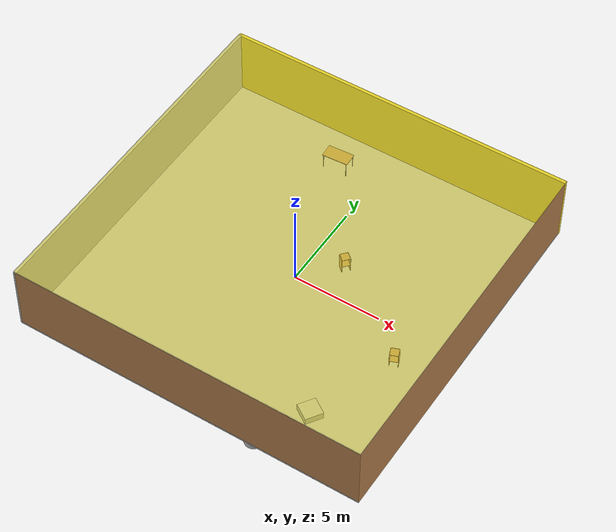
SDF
<sdf version="1.4">
 <world name="default">
  <physics type="ode">
   <max_step_size>0.001</max_step_size>
   <real_time_factor>1</real_time_factor>
   <real_time_update_rate>1000</real_time_update_rate>
   <gravity>0 0 -9.8</gravity>
  </physics>
  <scene><ambient>0.4 0.4 0.4 1</ambient><background>0.7 0.7 0.7 1</background><shadows>1</shadows></scene>
  <model name="Surrounding">
   <static>1</static>
   <link name="Ceiling">
    <collision name="Ceiling_Collision"><geometry><box><size>20 20 0.1</size></box></geometry></collision>
    <visual name="Ceiling_Visual">
     <geometry><box><size>20 20 0.1</size></box></geometry>
     <material>
      <script>
       <uri>file://media/materials/scripts/gazebo.material</uri>
       <name>Gazebo/YellowTransparent</name>
      </script>
     </material>
    </visual>
    <pose>0 0 4.05 0 0 0</pose>
   </link>
   <link name="Wall_South">
    <collision name="Wall_South_Collision">
     <geometry><box><size>20 0 4</size></box></geometry>
     <pose>0 0 2 0 -0 0</pose>
    </collision>
    <visual name="Wall_South_Visual">
     <pose>0 0 2 0 -0 0</pose>
     <geometry><box><size>20 0 4</size></box></geometry>
     <material>
      <script><uri>file://media/materials/scripts/gazebo.material</uri><name>Gazebo/Wood</name></script>
     </material>
    </visual>
    <velocity_decay><linear>0</linear><angular>0</angular></velocity_decay>
    <pose>0 -10 0 0 -0 0</pose>
   </link>
   <link name="Wall_East">
    <collision name="Wall_21_Collision">
     <geometry><box><size>20 0 4</size></box></geometry>
     <pose>0 0 2 0 -0 0</pose>
    </collision>
    <visual name="Wall_21_Visual">
     <pose>0 0 2 0 -0 0</pose>
     <geometry><box><size>20 0 4</size></box></geometry>
     <material>
      <script><uri>file://media/materials/scripts/gazebo.material</uri><name>Gazebo/WoodPallet</name></script>
     </material>
    </visual>
    <velocity_decay><linear>0</linear><angular>0</angular></velocity_decay>
    <pose>10 0 0 0 -0 1.5708</pose>
   </link>
   <link name="Wall_North">
    <collision name="Wall_22_Collision">
     <geometry><box><size>20 0.2 4</size></box></geometry>
     <pose>0 0 2 0 -0 0</pose>
    </collision>
    <visual name="Wall_22_Visual">
     <pose>0 0 2 0 -0 0</pose>
     <geometry><box><size>20 0.2 4</size></box></geometry>
     <material>
      <script><uri>file://media/materials/scripts/gazebo.material</uri><name>Gazebo/ZincYellow</name></script>
     </material>
    </visual>
    <velocity_decay><linear>0</linear><angular>0</angular></velocity_decay>
    <pose>0 10 0 0 -0 0</pose>
   </link>
   <link name="Wall_West">
    <collision name="Wall_23_Collision">
     <geometry><box><size>20 0.2 4</size></box></geometry>
     <pose>0 0 2 0 -0 0</pose>
    </collision>
    <visual name="Wall_23_Visual">
     <pose>0 0 2 0 -0 0</pose>
     <geometry><box><size>20 0.2 4</size></box></geometry>
     <material>
      <script><uri>file://media/materials/scripts/gazebo.material</uri><name>Gazebo/Pioneer2Body</name></script>
     </material>
    </visual>
    <velocity_decay><linear>0</linear><angular>0</angular></velocity_decay>
    <pose>-10 0 0 0 0 -1.5708</pose>
   </link>
   <link name="Ground_link">
    <collision name="collision">
     <pose>0 0 .05 0 -0 0</pose>
     <geometry><box><size>20 20 0.1</size></box></geometry>
    </collision>
    <visual name="visual">
     <pose>0 0 .05 0 -0 0</pose>
     <geometry><box><size>20 20 0.1</size></box></geometry>
     <material>
      <script><uri>file://media/materials/scripts/gazebo.material</uri><name>Gazebo/Pioneer2Body</name></script>
     </material>
    </visual>
   </link>
   <static>1</static>
  </model>
  <spherical_coordinates>
   <surface_model>EARTH_WGS84</surface_model>
   <latitude_deg>0</latitude_deg>
   <longitude_deg>0</longitude_deg>
   <elevation>0</elevation>
   <heading_deg>0</heading_deg>
  </spherical_coordinates>
  <light name="lightball_0" type="diffuse">
   <diffuse>0.8 0.8 0.8 1</diffuse>
   <specular>0.2 0.2 0.2 1</specular>
   <attenuation>
    <range>100</range>
    <constant>0.7</constant>
    <linear>0.01</linear>
    <quadratic>0.001</quadratic>
   </attenuation>
   <direction>-0.5 0.1 -0.9</direction>
   <pose>9.16212608148 -2.12675593524 1.04250743232 0 0 0</pose>
  </light>
  <light name="lightball_1" type="diffuse">
   <diffuse>0.8 0.8 0.8 1</diffuse>
   <specular>0.2 0.2 0.2 1</specular>
   <attenuation>
    <range>100</range>
    <constant>0.7</constant>
    <linear>0.01</linear>
    <quadratic>0.001</quadratic>
   </attenuation>
   <direction>-0.5 0.1 -0.9</direction>
   <pose>-0.4319742125 -4.40209914613 1.16134979477 0 0 0</pose>
  </light>
  <light name="lightball_2" type="diffuse">
   <diffuse>0.8 0.8 0.8 1</diffuse>
   <specular>0.2 0.2 0.2 1</specular>
   <attenuation>
    <range>100</range>
    <constant>0.7</constant>
    <linear>0.01</linear>
    <quadratic>0.001</quadratic>
   </attenuation>
   <direction>-0.5 0.1 -0.9</direction>
   <pose>-1.50178055695 8.26961461822 1.22694117194 0 0 0</pose>
  </light>
  <light name="lightball_3" type="diffuse">
   <diffuse>0.8 0.8 0.8 1</diffuse>
   <specular>0.2 0.2 0.2 1</specular>
   <attenuation>
    <range>100</range>
    <constant>0.7</constant>
    <linear>0.01</linear>
    <quadratic>0.001</quadratic>
   </attenuation>
   <direction>-0.5 0.1 -0.9</direction>
   <pose>9.84298703185 -2.27464212983 3.66704180984 0 0 0</pose>
  </light>
  <light name="lightball_4" type="diffuse">
   <diffuse>0.8 0.8 0.8 1</diffuse>
   <specular>0.2 0.2 0.2 1</specular>
   <attenuation>
    <range>100</range>
    <constant>0.7</constant>
    <linear>0.01</linear>
    <quadratic>0.001</quadratic>
   </attenuation>
   <direction>-0.5 0.1 -0.9</direction>
   <pose>-7.11588082516 -2.44811560885 1.3666836894 0 0 0</pose>
  </light>
  <light name="lightball_5" type="diffuse">
   <diffuse>0.8 0.8 0.8 1</diffuse>
   <specular>0.2 0.2 0.2 1</specular>
   <attenuation>
    <range>100</range>
    <constant>0.7</constant>
    <linear>0.01</linear>
    <quadratic>0.001</quadratic>
   </attenuation>
   <direction>-0.5 0.1 -0.9</direction>
   <pose>8.95875267318 -4.79692239595 2.98243171313 0 0 0</pose>
  </light>
  <light name="lightball_6" type="diffuse">
   <diffuse>0.8 0.8 0.8 1</diffuse>
   <specular>0.2 0.2 0.2 1</specular>
   <attenuation>
    <range>100</range>
    <constant>0.7</constant>
    <linear>0.01</linear>
    <quadratic>0.001</quadratic>
   </attenuation>
   <direction>-0.5 0.1 -0.9</direction>
   <pose>-8.33292255689 5.75089829513 1.05073721311 0 0 0</pose>
  </light>
  <light name="lightball_7" type="diffuse">
   <diffuse>0.8 0.8 0.8 1</diffuse>
   <specular>0.2 0.2 0.2 1</specular>
   <attenuation>
    <range>100</range>
    <constant>0.7</constant>
    <linear>0.01</linear>
    <quadratic>0.001</quadratic>
   </attenuation>
   <direction>-0.5 0.1 -0.9</direction>
   <pose>2.40916771599 6.37073337851 2.86267307606 0 0 0</pose>
  </light>
  <light name="lightball_8" type="diffuse">
   <diffuse>0.8 0.8 0.8 1</diffuse>
   <specular>0.2 0.2 0.2 1</specular>
   <attenuation>
    <range>100</range>
    <constant>0.7</constant>
    <linear>0.01</linear>
    <quadratic>0.001</quadratic>
   </attenuation>
   <direction>-0.5 0.1 -0.9</direction>
   <pose>4.01658959495 3.01948973629 1.09806132666 0 0 0</pose>
  </light>
  <light name="lightball_9" type="diffuse">
   <diffuse>0.8 0.8 0.8 1</diffuse>
   <specular>0.2 0.2 0.2 1</specular>
   <attenuation>
    <range>100</range>
    <constant>0.7</constant>
    <linear>0.01</linear>
    <quadratic>0.001</quadratic>
   </attenuation>
   <direction>-0.5 0.1 -0.9</direction>
   <pose>-9.24451203351 -0.123563676989 2.77249873351 0 0 0</pose>
  </light>
  <light name="lightball_10" type="diffuse">
   <diffuse>0.8 0.8 0.8 1</diffuse>
   <specular>0.2 0.2 0.2 1</specular>
   <attenuation>
    <range>100</range>
    <constant>0.7</constant>
    <linear>0.01</linear>
    <quadratic>0.001</quadratic>
   </attenuation>
   <direction>-0.5 0.1 -0.9</direction>
   <pose>-3.8247276625 1.5926229885 2.58359404905 0 0 0</pose>
  </light>
  <light name="lightball_11" type="diffuse">
   <diffuse>0.8 0.8 0.8 1</diffuse>
   <specular>0.2 0.2 0.2 1</specular>
   <attenuation>
    <range>100</range>
    <constant>0.7</constant>
    <linear>0.01</linear>
    <quadratic>0.001</quadratic>
   </attenuation>
   <direction>-0.5 0.1 -0.9</direction>
   <pose>-4.34664506278 1.65009309299 0.909630264769 0 0 0</pose>
  </light>
  <light name="lightball_12" type="diffuse">
   <diffuse>0.8 0.8 0.8 1</diffuse>
   <specular>0.2 0.2 0.2 1</specular>
   <attenuation>
    <range>100</range>
    <constant>0.7</constant>
    <linear>0.01</linear>
    <quadratic>0.001</quadratic>
   </attenuation>
   <direction>-0.5 0.1 -0.9</direction>
   <pose>-1.63267790399 -7.69519662596 2.41200517608 0 0 0</pose>
  </light>
  <light name="lightball_13" type="diffuse">
   <diffuse>0.8 0.8 0.8 1</diffuse>
   <specular>0.2 0.2 0.2 1</specular>
   <attenuation>
    <range>100</range>
    <constant>0.7</constant>
    <linear>0.01</linear>
    <quadratic>0.001</quadratic>
   </attenuation>
   <direction>-0.5 0.1 -0.9</direction>
   <pose>-8.01927840218 9.67472553347 3.15177092444 0 0 0</pose>
  </light>
  <include><uri>model://table</uri><pose>-2.2303222567 7.67996368925 0 0 0 0.0640368085906</pose></include>
  <include><uri>model://cabinet</uri><pose>1.84988569118 1.84393368697 0 0 0 2.4267068492</pose></include>
  <include>
   <uri>model://textured_shapes</uri>
   <pose>4.48399420427 -8.15764623671 0 0 0 2.55312660745</pose>
  </include>
  <include><uri>model://cabinet</uri><pose>7.17251303569 -2.06172954525 0 0 0 1.94200100918</pose></include>
 </world>
</sdf>

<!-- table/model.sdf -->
<sdf version="1.5">
  <model name="table">
    <static>true</static>
    <link name="link">
      <collision name="surface">
        <pose>0 0 1.0 0 0 0</pose>
        <geometry>
          <box>
            <size>1.5 0.8 0.03</size>
          </box>
        </geometry>
        <surface>
          <friction>
            <ode>
              <mu>0.6</mu>
              <mu2>0.6</mu2>
            </ode>
          </friction>
        </surface>
      </collision>
      <visual name="visual1">
        <pose>0 0 1.0 0 0 0</pose>
        <geometry>
          <box>
            <size>1.5 0.8 0.03</size>
          </box>
        </geometry>
        <material>
          <script>
            <uri>model://media/materials/scripts/gazebo.material</uri>
            <name>Gazebo/Wood</name>
          </script>
        </material>
      </visual>
      <collision name="front_left_leg">
        <pose>0.68 0.38 0.5 0 0 0</pose>
        <geometry>
          <cylinder>
            <radius>0.02</radius>
            <length>1.0</length>
          </cylinder>
        </geometry>
      </collision>
      <visual name="front_left_leg">
        <pose>0.68 0.38 0.5 0 0 0</pose>
        <geometry>
          <cylinder>
            <radius>0.02</radius>
            <length>1.0</length>
          </cylinder>
        </geometry>
        <material>
          <script>
            <uri>model://media/materials/scripts/gazebo.material</uri>
            <name>Gazebo/Grey</name>
          </script>
        </material>
      </visual>
      <collision name="front_right_leg">
        <pose>0.68 -0.38 0.5 0 0 0</pose>
        <geometry>
          <cylinder>
            <radius>0.02</radius>
            <length>1.0</length>
          </cylinder>
        </geometry>
      </collision>
      <visual name="front_right_leg">
        <pose>0.68 -0.38 0.5 0 0 0</pose>
        <geometry>
          <cylinder>
            <radius>0.02</radius>
            <length>1.0</length>
          </cylinder>
        </geometry>
        <material>
          <script>
            <uri>model://media/materials/scripts/gazebo.material</uri>
            <name>Gazebo/Grey</name>
          </script>
        </material>
      </visual>
      <collision name="back_right_leg">
        <pose>-0.68 -0.38 0.5 0 0 0</pose>
        <geometry>
          <cylinder>
            <radius>0.02</radius>
            <length>1.0</length>
          </cylinder>
        </geometry>
      </collision>
      <visual name="back_right_leg">
        <pose>-0.68 -0.38 0.5 0 0 0</pose>
        <geometry>
          <cylinder>
            <radius>0.02</radius>
            <length>1.0</length>
          </cylinder>
        </geometry>
        <material>
          <script>
            <uri>model://media/materials/scripts/gazebo.material</uri>
            <name>Gazebo/Grey</name>
          </script>
        </material>
      </visual>
      <collision name="back_left_leg">
        <pose>-0.68 0.38 0.5 0 0 0</pose>
        <geometry>
          <cylinder>
            <radius>0.02</radius>
            <length>1.0</length>
          </cylinder>
        </geometry>
      </collision>
      <visual name="back_left_leg">
        <pose>-0.68 0.38 0.5 0 0 0</pose>
        <geometry>
          <cylinder>
            <radius>0.02</radius>
            <length>1.0</length>
          </cylinder>
        </geometry>
        <material>
          <script>
            <uri>model://media/materials/scripts/gazebo.material</uri>
            <name>Gazebo/Grey</name>
          </script>
        </material>
      </visual>
    </link>
  </model>
</sdf>

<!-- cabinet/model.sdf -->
<sdf version="1.5">
  <model name="cabinet">
    <static>true</static>
    <link name="cabinet_bottom_plate">
      <inertial>
        <pose>0 0 -1 0 0 0</pose>
        <inertia>
          <ixx>2.050000</ixx>
          <ixy>0</ixy>
          <ixz>0</ixz>
          <iyy>2.050000</iyy>
          <iyz>0</iyz>
          <izz>2.050000</izz>
        </inertia>
        <mass>25.000000</mass>
      </inertial>
      <collision name="cabinet_bottom_plate_geom">
        <pose>0 0 0.010000 0 0 0</pose>
        <geometry>
          <box>
            <size>0.450000 0.450000 0.020000</size>
          </box>
        </geometry>
      </collision>
      <visual name="cabinet_bottom_plate_geom_visual">
        <pose>0 0 0.010000 0 0 0</pose>
        <geometry>
          <box>
            <size>0.450000 0.450000 0.020000</size>
          </box>
        </geometry>
        <material>
          <script>
            <uri>model://media/materials/scripts/gazebo.material</uri>
            <name>Gazebo/Wood</name>
          </script>
        </material>
      </visual>
      <collision name="cabinet_bottom_plate_geom_cabinet_back_plate">
        <pose>0.235000 0 0.510000 0 0 0</pose>
        <geometry>
          <box>
            <size>0.020000 0.450000 1.020000</size>
          </box>
        </geometry>
      </collision>
      <visual name="cabinet_bottom_plate_geom_cabinet_back_plate_visual">
        <pose>0.235000 0 0.510000 0 0 0</pose>
        <geometry>
          <box>
            <size>0.020000 0.450000 1.020000</size>
          </box>
        </geometry>
        <material>
          <script>
            <uri>model://media/materials/scripts/gazebo.material</uri>
            <name>Gazebo/Wood</name>
          </script>
        </material>
      </visual>
      <collision name="cabinet_bottom_plate_geom_cabinet_left_plate">
        <pose>0 0.235000 0.510000 0 0 0</pose>
        <geometry>
          <box>
            <size>0.450000 0.020000 1.020000</size>
          </box>
        </geometry>
      </collision>
      <visual name="cabinet_bottom_plate_geom_cabinet_left_plate_visual">
        <pose>0 0.235000 0.510000 0 0 0</pose>
        <geometry>
          <box>
            <size>0.450000 0.020000 1.020000</size>
          </box>
        </geometry>
        <material>
          <script>
            <uri>model://media/materials/scripts/gazebo.material</uri>
            <name>Gazebo/Wood</name>
          </script>
        </material>
      </visual>
      <collision name="cabinet_bottom_plate_geom_cabinet_middle_plate">
        <pose>0 0 0.510000 0 0 0</pose>
        <geometry>
          <box>
            <size>0.450000 0.450000 0.020000</size>
          </box>
        </geometry>
      </collision>
      <visual name="cabinet_bottom_plate_geom_cabinet_middle_plate_visual">
        <pose>0 0 0.510000 0 0 0</pose>
        <geometry>
          <box>
            <size>0.450000 0.450000 0.020000</size>
          </box>
        </geometry>
        <material>
          <script>
            <uri>model://media/materials/scripts/gazebo.material</uri>
            <name>Gazebo/Wood</name>
          </script>
        </material>
      </visual>
      <collision name="cabinet_bottom_plate_geom_cabinet_right_plate">
        <pose>0 -0.235000 0.510000 0 0 0</pose>
        <geometry>
          <box>
            <size>0.450000 0.020000 1.020000</size>
          </box>
        </geometry>
      </collision>
      <visual name="cabinet_bottom_plate_geom_cabinet_right_plate_visual">
        <pose>0 -0.235000 0.510000 0 0 0</pose>
        <geometry>
          <box>
            <size>0.450000 0.020000 1.020000</size>
          </box>
        </geometry>
        <material>
          <script>
            <uri>model://media/materials/scripts/gazebo.material</uri>
            <name>Gazebo/Wood</name>
          </script>
        </material>
      </visual>
      <collision name="cabinet_bottom_plate_geom_cabinet_top_plate">
        <pose>0 0 1.010000 0 0 0</pose>
        <geometry>
          <box>
            <size>0.450000 0.450000 0.020000</size>
          </box>
        </geometry>
      </collision>
      <visual name="cabinet_bottom_plate_geom_cabinet_top_plate_visual">
        <pose>0 0 1.010000 0 0 0</pose>
        <geometry>
          <box>
            <size>0.450000 0.450000 0.020000</size>
          </box>
        </geometry>
        <material>
          <script>
            <uri>model://media/materials/scripts/gazebo.material</uri>
            <name>Gazebo/Wood</name>
          </script>
        </material>
      </visual>
    </link>
  </model>
</sdf>

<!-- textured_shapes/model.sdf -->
<sdf version="1.6">
  <model name="textured_shapes">
    <pose>0 0 0.5 0 0 0</pose>
    <link name="box">
      <pose>0 -1.5 0 0 0 0</pose>
      <collision name="collision">
        <geometry>
          <box>
            <size>1 1 1</size>
          </box>
        </geometry>
      </collision>
      <visual name="visual">
        <geometry>
          <box>
            <size>1 1 1</size>
          </box>
        </geometry>
        <material>
          <script>
            <uri>model://../model_source/models/textured_shapes/materials/scripts</uri>
            <uri>model://../model_source/models/textured_shapes/materials/textures</uri>
            <name>TexturedShape/Squares</name>
          </script>
        </material>
      </visual>
    </link>
    <link name="sphere">
      <collision name="collision">
        <geometry>
          <sphere>
            <radius>0.5</radius>
          </sphere>
        </geometry>
      </collision>
      <visual name="visual">
        <geometry>
          <sphere>
            <radius>0.5</radius>
          </sphere>
        </geometry>
        <material>
          <script>
            <uri>model://../model_source/models/textured_shapes/materials/scripts</uri>
            <uri>model://../model_source/models/textured_shapes/materials/textures</uri>
            <name>TexturedShape/Squares</name>
          </script>
        </material>
      </visual>
    </link>
    <link name="cylinder">
      <pose>0 1.5 0 0 0 0</pose>
      <collision name="collision">
        <geometry>
          <cylinder>
            <radius>0.5</radius>
            <length>1</length>
          </cylinder>
        </geometry>
      </collision>
      <visual name="visual">
        <geometry>
          <cylinder>
            <radius>0.5</radius>
            <length>1</length>
          </cylinder>
        </geometry>
        <material>
          <script>
            <uri>model://../model_source/models/textured_shapes/materials/scripts</uri>
            <uri>model://../model_source/models/textured_shapes/materials/textures</uri>
            <name>TexturedShape/Squares</name>
          </script>
        </material>
      </visual>
    </link>
  </model>
</sdf>
